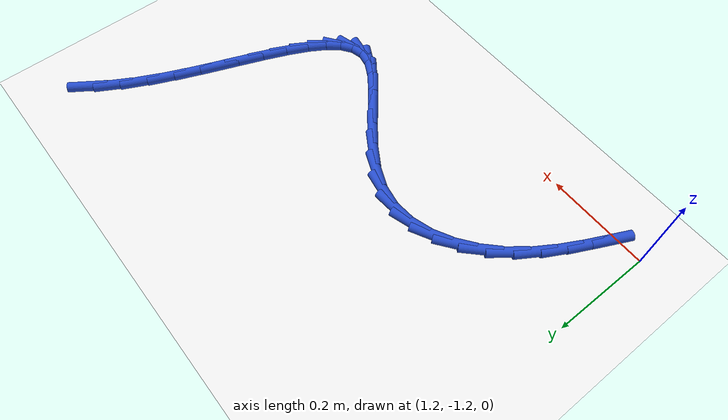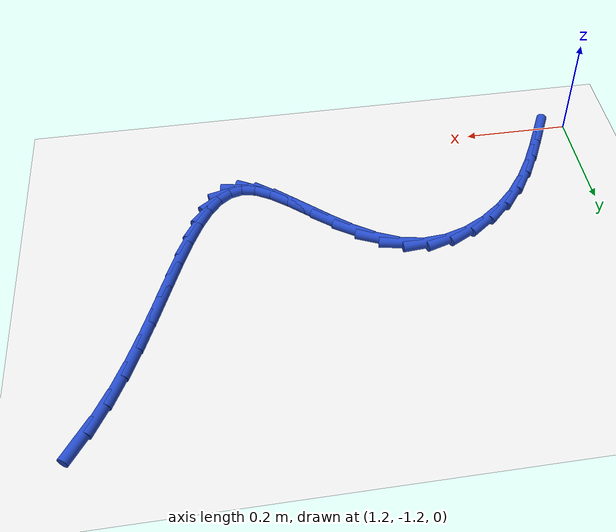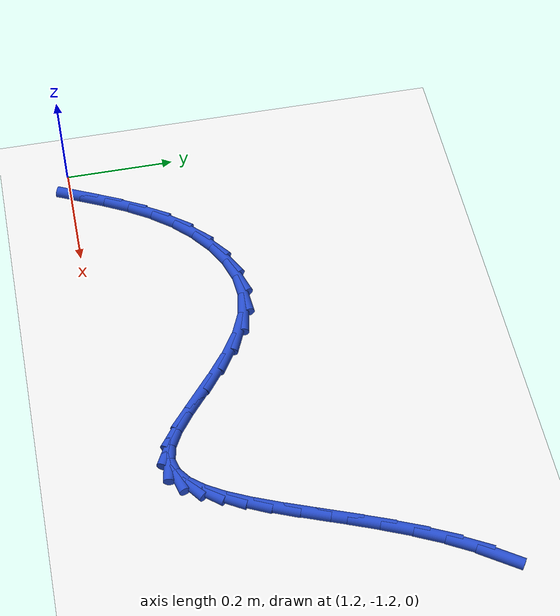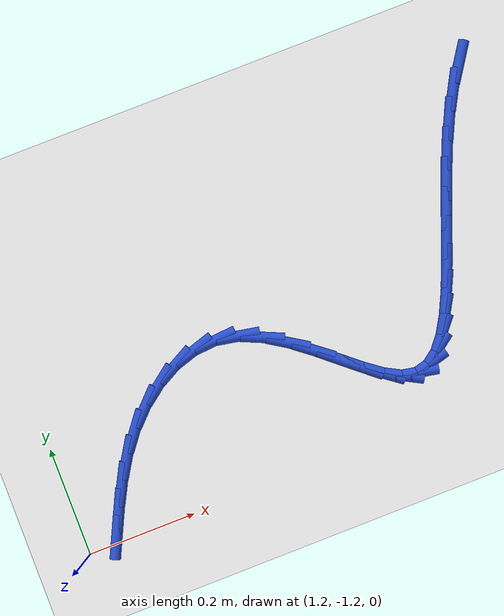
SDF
<sdf version="1.6">
 <world name="default">
  <model name="ground_plane">
   <static>1</static>
   <link name="link">
    <collision name="collision">
     <geometry><plane><normal>0 0 1</normal><size>100 100</size></plane></geometry>
     <surface><friction><ode><mu>100</mu><mu2>50</mu2></ode></friction></surface>
    </collision>
    <visual name="visual">
     <cast_shadows>0</cast_shadows>
     <geometry><plane><normal>0 0 1</normal><size>100 100</size></plane></geometry>
     <material>
      <script><uri>file://media/materials/scripts/gazebo.material</uri><name>Gazebo/WhiteGlow</name></script>
     </material>
    </visual>
   </link>
  </model>
  <model name="line">
   <link name="link_111">
    <pose>2.1395858741298652 -0.6143125537972107 0.01 0 1.57 0.982940385228043</pose>
    <collision name="collision">
     <geometry><cylinder><radius>0.01</radius><length>0.08</length></cylinder></geometry>
    </collision>
    <visual name="visual">
     <material>
      <script><name>Gazebo/Blue</name><uri>file://media/materials/scripts/gazebo.material</uri></script>
     </material>
     <geometry><cylinder><radius>0.01</radius><length>0.08</length></cylinder></geometry>
    </visual>
   </link>
   <link name="link_112">
    <pose>2.1109514012491224 -0.6572779147843489 0.01 0 1.57 1.0662874942307612</pose>
    <collision name="collision">
     <geometry><cylinder><radius>0.01</radius><length>0.08</length></cylinder></geometry>
    </collision>
    <visual name="visual">
     <material>
      <script><name>Gazebo/Blue</name><uri>file://media/materials/scripts/gazebo.material</uri></script>
     </material>
     <geometry><cylinder><radius>0.01</radius><length>0.08</length></cylinder></geometry>
    </visual>
   </link>
   <link name="link_113">
    <pose>2.085211287310953 -0.7038940759625648 0.01 0 1.57 1.1272822400929683</pose>
    <collision name="collision">
     <geometry><cylinder><radius>0.01</radius><length>0.08</length></cylinder></geometry>
    </collision>
    <visual name="visual">
     <material>
      <script><name>Gazebo/Blue</name><uri>file://media/materials/scripts/gazebo.material</uri></script>
     </material>
     <geometry><cylinder><radius>0.01</radius><length>0.08</length></cylinder></geometry>
    </visual>
   </link>
   <link name="link_114">
    <pose>2.0619113549345296 -0.7529382444243866 0.01 0 1.57 1.1696348525480413</pose>
    <collision name="collision">
     <geometry><cylinder><radius>0.01</radius><length>0.08</length></cylinder></geometry>
    </collision>
    <visual name="visual">
     <material>
      <script><name>Gazebo/Blue</name><uri>file://media/materials/scripts/gazebo.material</uri></script>
     </material>
     <geometry><cylinder><radius>0.01</radius><length>0.08</length></cylinder></geometry>
    </visual>
   </link>
   <link name="link_115">
    <pose>2.0405974267390268 -0.8031876272623425 0.01 0 1.57 1.195632098956455</pose>
    <collision name="collision">
     <geometry><cylinder><radius>0.01</radius><length>0.08</length></cylinder></geometry>
    </collision>
    <visual name="visual">
     <material>
      <script><name>Gazebo/Blue</name><uri>file://media/materials/scripts/gazebo.material</uri></script>
     </material>
     <geometry><cylinder><radius>0.01</radius><length>0.08</length></cylinder></geometry>
    </visual>
   </link>
   <link name="link_116">
    <pose>2.020815325343617 -0.8534194315689616 0.01 0 1.57 1.206085880422435</pose>
    <collision name="collision">
     <geometry><cylinder><radius>0.01</radius><length>0.08</length></cylinder></geometry>
    </collision>
    <visual name="visual">
     <material>
      <script><name>Gazebo/Blue</name><uri>file://media/materials/scripts/gazebo.material</uri></script>
     </material>
     <geometry><cylinder><radius>0.01</radius><length>0.08</length></cylinder></geometry>
    </visual>
   </link>
   <link name="link_117">
    <pose>2.0021108733674753 -0.9024108644367724 0.01 0 1.57 1.2001542308297077</pose>
    <collision name="collision">
     <geometry><cylinder><radius>0.01</radius><length>0.08</length></cylinder></geometry>
    </collision>
    <visual name="visual">
     <material>
      <script><name>Gazebo/Blue</name><uri>file://media/materials/scripts/gazebo.material</uri></script>
     </material>
     <geometry><cylinder><radius>0.01</radius><length>0.08</length></cylinder></geometry>
    </visual>
   </link>
   <link name="link_118">
    <pose>1.9840298934297733 -0.9489391329583031 0.01 0 1.57 1.1747981381643233</pose>
    <collision name="collision">
     <geometry><cylinder><radius>0.01</radius><length>0.08</length></cylinder></geometry>
    </collision>
    <visual name="visual">
     <material>
      <script><name>Gazebo/Blue</name><uri>file://media/materials/scripts/gazebo.material</uri></script>
     </material>
     <geometry><cylinder><radius>0.01</radius><length>0.08</length></cylinder></geometry>
    </visual>
   </link>
   <link name="link_119">
    <pose>1.9661182081496846 -0.991781444226084 0.01 0 1.57 1.123523659191975</pose>
    <collision name="collision">
     <geometry><cylinder><radius>0.01</radius><length>0.08</length></cylinder></geometry>
    </collision>
    <visual name="visual">
     <material>
      <script><name>Gazebo/Blue</name><uri>file://media/materials/scripts/gazebo.material</uri></script>
     </material>
     <geometry><cylinder><radius>0.01</radius><length>0.08</length></cylinder></geometry>
    </visual>
   </link>
   <link name="link_120">
    <pose>1.9479216401463826 -1.029715005332643 0.01 0 1.57 1.033749641931036</pose>
    <collision name="collision">
     <geometry><cylinder><radius>0.01</radius><length>0.08</length></cylinder></geometry>
    </collision>
    <visual name="visual">
     <material>
      <script><name>Gazebo/Blue</name><uri>file://media/materials/scripts/gazebo.material</uri></script>
     </material>
     <geometry><cylinder><radius>0.01</radius><length>0.08</length></cylinder></geometry>
    </visual>
   </link>
   <link name="link_121">
    <pose>1.9289860120390403 -1.061517023370509 0.01 0 1.57 0.8819821080308391</pose>
    <collision name="collision">
     <geometry><cylinder><radius>0.01</radius><length>0.08</length></cylinder></geometry>
    </collision>
    <visual name="visual">
     <material>
      <script><name>Gazebo/Blue</name><uri>file://media/materials/scripts/gazebo.material</uri></script>
     </material>
     <geometry><cylinder><radius>0.01</radius><length>0.08</length></cylinder></geometry>
    </visual>
   </link>
   <link name="link_122">
    <pose>1.9088571464468314 -1.08596470543221 0.01 0 1.57 0.6297944792391224</pose>
    <collision name="collision">
     <geometry><cylinder><radius>0.01</radius><length>0.08</length></cylinder></geometry>
    </collision>
    <visual name="visual">
     <material>
      <script><name>Gazebo/Blue</name><uri>file://media/materials/scripts/gazebo.material</uri></script>
     </material>
     <geometry><cylinder><radius>0.01</radius><length>0.08</length></cylinder></geometry>
    </visual>
   </link>
   <link name="link_123">
    <pose>1.887080865988929 -1.1018352586102758 0.01 0 1.57 0.24896214658109161</pose>
    <collision name="collision">
     <geometry><cylinder><radius>0.01</radius><length>0.08</length></cylinder></geometry>
    </collision>
    <visual name="visual">
     <material>
      <script><name>Gazebo/Blue</name><uri>file://media/materials/scripts/gazebo.material</uri></script>
     </material>
     <geometry><cylinder><radius>0.01</radius><length>0.08</length></cylinder></geometry>
    </visual>
   </link>
   <link name="link_124">
    <pose>1.8632029932845067 -1.1079058899972345 0.01 0 1.57 -0.1847258345748363</pose>
    <collision name="collision">
     <geometry><cylinder><radius>0.01</radius><length>0.08</length></cylinder></geometry>
    </collision>
    <visual name="visual">
     <material>
      <script><name>Gazebo/Blue</name><uri>file://media/materials/scripts/gazebo.material</uri></script>
     </material>
     <geometry><cylinder><radius>0.01</radius><length>0.08</length></cylinder></geometry>
    </visual>
   </link>
   <link name="link_125">
    <pose>1.8367715770488071 -1.102967018949592 0.01 0 1.57 -0.4949932068858228</pose>
    <collision name="collision">
     <geometry><cylinder><radius>0.01</radius><length>0.08</length></cylinder></geometry>
    </collision>
    <visual name="visual">
     <material>
      <script><name>Gazebo/Blue</name><uri>file://media/materials/scripts/gazebo.material</uri></script>
     </material>
     <geometry><cylinder><radius>0.01</radius><length>0.08</length></cylinder></geometry>
    </visual>
   </link>
   <link name="link_126">
    <pose>1.8075695619783834 -1.0872032129714215 0.01 0 1.57 -0.64323743835379</pose>
    <collision name="collision">
     <geometry><cylinder><radius>0.01</radius><length>0.08</length></cylinder></geometry>
    </collision>
    <visual name="visual">
     <material>
      <script><name>Gazebo/Blue</name><uri>file://media/materials/scripts/gazebo.material</uri></script>
     </material>
     <geometry><cylinder><radius>0.01</radius><length>0.08</length></cylinder></geometry>
    </visual>
   </link>
   <link name="link_127">
    <pose>1.7758186438152959 -1.0634031026671134 0.01 0 1.57 -0.7017067362682199</pose>
    <collision name="collision">
     <geometry><cylinder><radius>0.01</radius><length>0.08</length></cylinder></geometry>
    </collision>
    <visual name="visual">
     <material>
      <script><name>Gazebo/Blue</name><uri>file://media/materials/scripts/gazebo.material</uri></script>
     </material>
     <geometry><cylinder><radius>0.01</radius><length>0.08</length></cylinder></geometry>
    </visual>
   </link>
   <link name="link_128">
    <pose>1.7417885748452715 -1.0346405425131553 0.01 0 1.57 -0.7047776416722836</pose>
    <collision name="collision">
     <geometry><cylinder><radius>0.01</radius><length>0.08</length></cylinder></geometry>
    </collision>
    <visual name="visual">
     <material>
      <script><name>Gazebo/Blue</name><uri>file://media/materials/scripts/gazebo.material</uri></script>
     </material>
     <geometry><cylinder><radius>0.01</radius><length>0.08</length></cylinder></geometry>
    </visual>
   </link>
   <link name="link_129">
    <pose>1.7057491073540365 -1.0039893869860355 0.01 0 1.57 -0.6623964681567902</pose>
    <collision name="collision">
     <geometry><cylinder><radius>0.01</radius><length>0.08</length></cylinder></geometry>
    </collision>
    <visual name="visual">
     <material>
      <script><name>Gazebo/Blue</name><uri>file://media/materials/scripts/gazebo.material</uri></script>
     </material>
     <geometry><cylinder><radius>0.01</radius><length>0.08</length></cylinder></geometry>
    </visual>
   </link>
   <link name="link_130">
    <pose>1.6679699936273176 -0.974523490562241 0.01 0 1.57 -0.5708916622013278</pose>
    <collision name="collision">
     <geometry><cylinder><radius>0.01</radius><length>0.08</length></cylinder></geometry>
    </collision>
    <visual name="visual">
     <material>
      <script><name>Gazebo/Blue</name><uri>file://media/materials/scripts/gazebo.material</uri></script>
     </material>
     <geometry><cylinder><radius>0.01</radius><length>0.08</length></cylinder></geometry>
    </visual>
   </link>
   <link name="link_131">
    <pose>1.628720985950841 -0.9493167077182597 0.01 0 1.57 -0.4160838419560207</pose>
    <collision name="collision">
     <geometry><cylinder><radius>0.01</radius><length>0.08</length></cylinder></geometry>
    </collision>
    <visual name="visual">
     <material>
      <script><name>Gazebo/Blue</name><uri>file://media/materials/scripts/gazebo.material</uri></script>
     </material>
     <geometry><cylinder><radius>0.01</radius><length>0.08</length></cylinder></geometry>
    </visual>
   </link>
   <link name="link_132">
    <pose>1.5882718366103334 -0.9314428929305792 0.01 0 1.57 -0.18216693920377838</pose>
    <collision name="collision">
     <geometry><cylinder><radius>0.01</radius><length>0.08</length></cylinder></geometry>
    </collision>
    <visual name="visual">
     <material>
      <script><name>Gazebo/Blue</name><uri>file://media/materials/scripts/gazebo.material</uri></script>
     </material>
     <geometry><cylinder><radius>0.01</radius><length>0.08</length></cylinder></geometry>
    </visual>
   </link>
   <link name="link_133">
    <pose>1.5469149799691644 -0.9238245832377193 0.01 0 1.57 0.07731424001625185</pose>
    <collision name="collision">
     <geometry><cylinder><radius>0.01</radius><length>0.08</length></cylinder></geometry>
    </collision>
    <visual name="visual">
     <material>
      <script><name>Gazebo/Blue</name><uri>file://media/materials/scripts/gazebo.material</uri></script>
     </material>
     <geometry><cylinder><radius>0.01</radius><length>0.08</length></cylinder></geometry>
    </visual>
   </link>
   <link name="link_134">
    <pose>1.5052929095650471 -0.9270489891604726 0.01 0 1.57 0.30325031971724187</pose>
    <collision name="collision">
     <geometry><cylinder><radius>0.01</radius><length>0.08</length></cylinder></geometry>
    </collision>
    <visual name="visual">
     <material>
      <script><name>Gazebo/Blue</name><uri>file://media/materials/scripts/gazebo.material</uri></script>
     </material>
     <geometry><cylinder><radius>0.01</radius><length>0.08</length></cylinder></geometry>
    </visual>
   </link>
   <link name="link_135">
    <pose>1.4643231577440314 -0.9398684730865697 0.01 0 1.57 0.4920933271452626</pose>
    <collision name="collision">
     <geometry><cylinder><radius>0.01</radius><length>0.08</length></cylinder></geometry>
    </collision>
    <visual name="visual">
     <material>
      <script><name>Gazebo/Blue</name><uri>file://media/materials/scripts/gazebo.material</uri></script>
     </material>
     <geometry><cylinder><radius>0.01</radius><length>0.08</length></cylinder></geometry>
    </visual>
   </link>
   <link name="link_136">
    <pose>1.4249306607141585 -0.9609860045110044 0.01 0 1.57 0.6512764778032103</pose>
    <collision name="collision">
     <geometry><cylinder><radius>0.01</radius><length>0.08</length></cylinder></geometry>
    </collision>
    <visual name="visual">
     <material>
      <script><name>Gazebo/Blue</name><uri>file://media/materials/scripts/gazebo.material</uri></script>
     </material>
     <geometry><cylinder><radius>0.01</radius><length>0.08</length></cylinder></geometry>
    </visual>
   </link>
   <link name="link_137">
    <pose>1.3880403546834705 -0.9891045529287703 0.01 0 1.57 0.7907388612374933</pose>
    <collision name="collision">
     <geometry><cylinder><radius>0.01</radius><length>0.08</length></cylinder></geometry>
    </collision>
    <visual name="visual">
     <material>
      <script><name>Gazebo/Blue</name><uri>file://media/materials/scripts/gazebo.material</uri></script>
     </material>
     <geometry><cylinder><radius>0.01</radius><length>0.08</length></cylinder></geometry>
    </visual>
   </link>
   <link name="link_138">
    <pose>1.354577175860011 -1.022927087834862 0.01 0 1.57 0.917856867162618</pose>
    <collision name="collision">
     <geometry><cylinder><radius>0.01</radius><length>0.08</length></cylinder></geometry>
    </collision>
    <visual name="visual">
     <material>
      <script><name>Gazebo/Blue</name><uri>file://media/materials/scripts/gazebo.material</uri></script>
     </material>
     <geometry><cylinder><radius>0.01</radius><length>0.08</length></cylinder></geometry>
    </visual>
   </link>
   <link name="link_139">
    <pose>1.3253516948174189 -1.0611376731972073 0.01 0 1.57 1.0193456757191746</pose>
    <collision name="collision">
     <geometry><cylinder><radius>0.01</radius><length>0.08</length></cylinder></geometry>
    </collision>
    <visual name="visual">
     <material>
      <script><name>Gazebo/Blue</name><uri>file://media/materials/scripts/gazebo.material</uri></script>
     </material>
     <geometry><cylinder><radius>0.01</radius><length>0.08</length></cylinder></geometry>
    </visual>
   </link>
   <link name="link_140">
    <pose>1.300070807856909 -1.1022379270598568 0.01 0 1.57 1.0874856683440652</pose>
    <collision name="collision">
     <geometry><cylinder><radius>0.01</radius><length>0.08</length></cylinder></geometry>
    </collision>
    <visual name="visual">
     <material>
      <script><name>Gazebo/Blue</name><uri>file://media/materials/scripts/gazebo.material</uri></script>
     </material>
     <geometry><cylinder><radius>0.01</radius><length>0.08</length></cylinder></geometry>
    </visual>
   </link>
   <link name="link_141">
    <pose>1.2778237277386075 -1.1446273595830967 0.01 0 1.57 1.1245542908911101</pose>
    <collision name="collision">
     <geometry><cylinder><radius>0.01</radius><length>0.08</length></cylinder></geometry>
    </collision>
    <visual name="visual">
     <material>
      <script><name>Gazebo/Blue</name><uri>file://media/materials/scripts/gazebo.material</uri></script>
     </material>
     <geometry><cylinder><radius>0.01</radius><length>0.08</length></cylinder></geometry>
    </visual>
   </link>
   <link name="link_142">
    <pose>1.2576928877883882 -1.1867043602341107 0.01 0 1.57 1.1303026462478885</pose>
    <collision name="collision">
     <geometry><cylinder><radius>0.01</radius><length>0.08</length></cylinder></geometry>
    </collision>
    <visual name="visual">
     <material>
      <script><name>Gazebo/Blue</name><uri>file://media/materials/scripts/gazebo.material</uri></script>
     </material>
     <geometry><cylinder><radius>0.01</radius><length>0.08</length></cylinder></geometry>
    </visual>
   </link>
  </model>
 </world>
</sdf>
